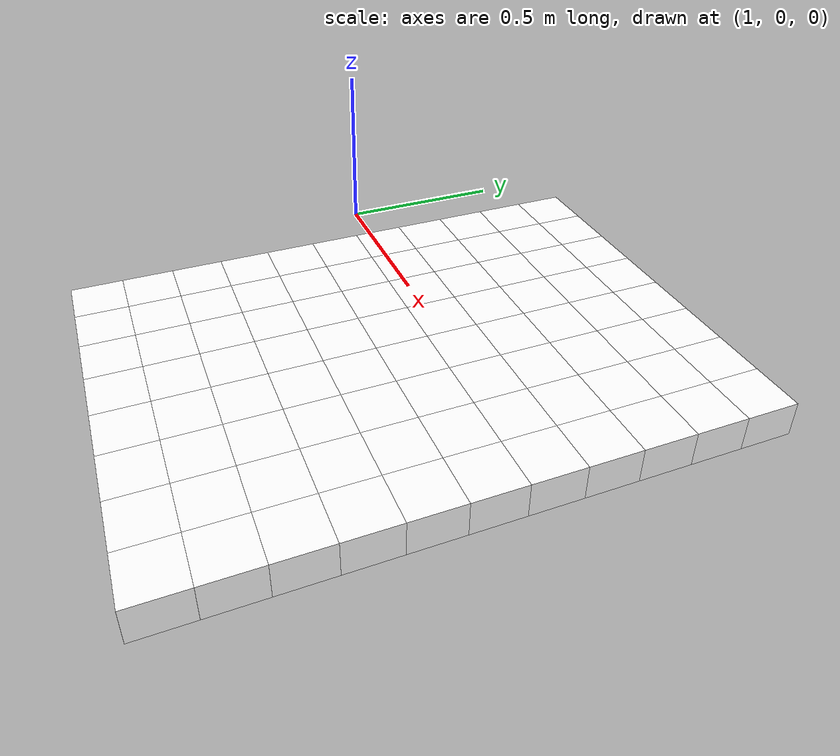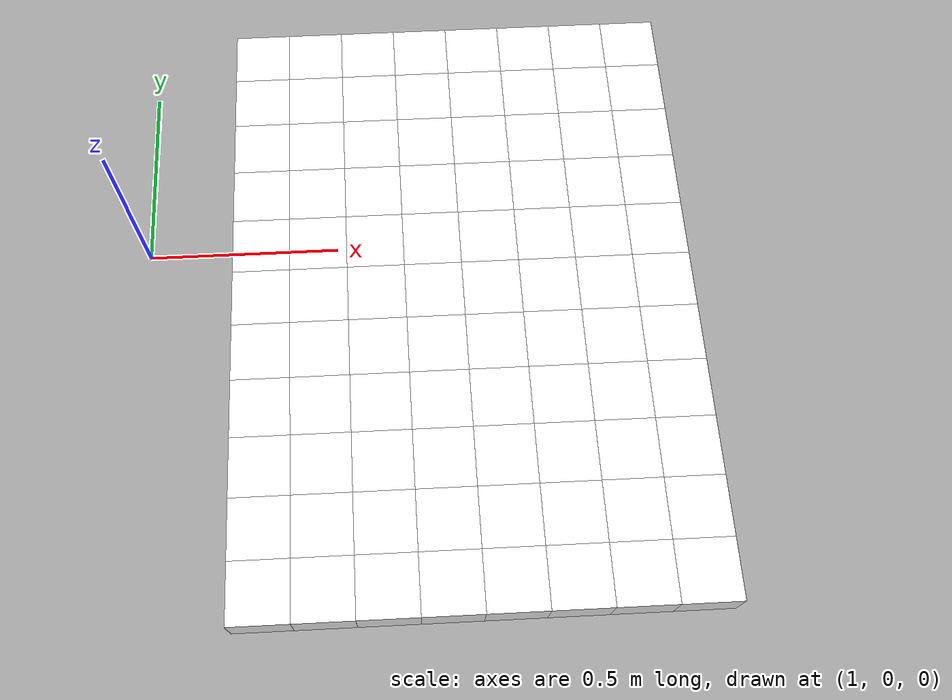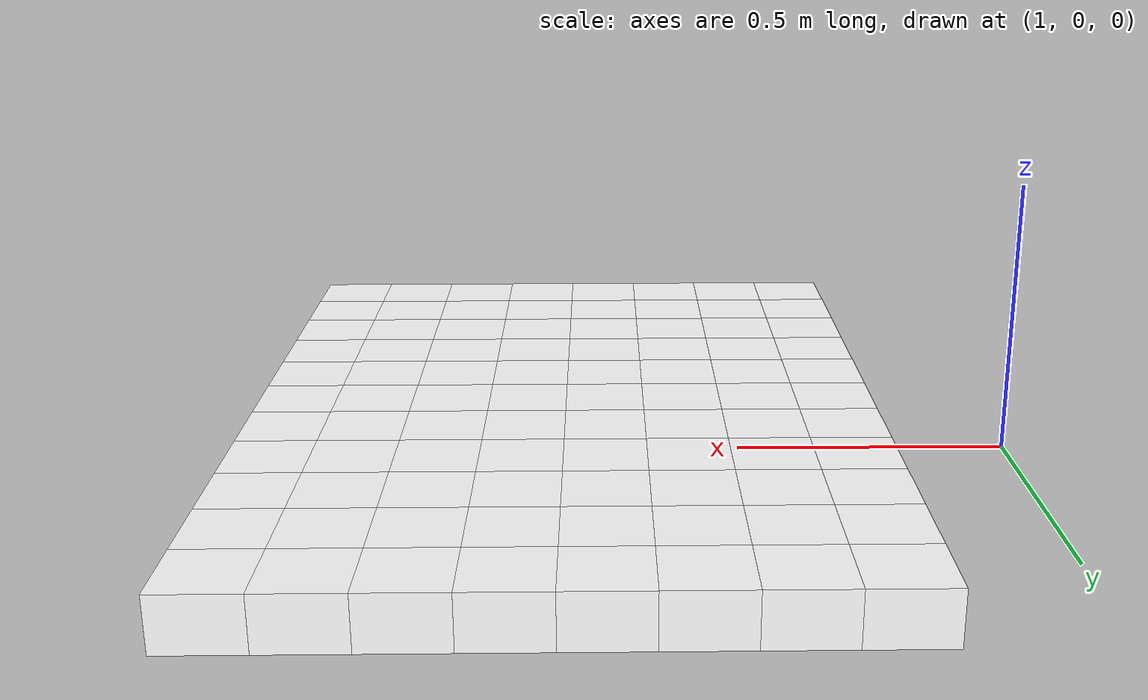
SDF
<sdf version="1.7">
 <world name="default">
  <include><uri>model://sun</uri></include>
  <model name="static_environment">
   <static>true</static>
   <link name="region_440">
    <pose>1.299999986936109 0.5997063647309107 0.0 0.0 0.0 4.7123</pose>
    <collision name="region_440_collision">
     <geometry><box><size>0.15 0.15 0.1</size></box></geometry>
     <surface><friction><ode><mu>1.0</mu><mu2>1.0</mu2></ode></friction></surface>
    </collision>
    <visual name="region_440_visual">
     <geometry><box><size>0.15 0.15 0.1</size></box></geometry>
     <material><ambient>1.0 1.0 1.0 1.0</ambient><diffuse>1.0 1.0 1.0 1.0</diffuse></material>
    </visual>
   </link>
   <link name="region_441">
    <pose>1.2999866398784232 0.44970636532472386 0.0 0.0 0.0 4.7123</pose>
    <collision name="region_441_collision">
     <geometry><box><size>0.15 0.15 0.1</size></box></geometry>
     <surface><friction><ode><mu>1.0</mu><mu2>1.0</mu2></ode></friction></surface>
    </collision>
    <visual name="region_441_visual">
     <geometry><box><size>0.15 0.15 0.1</size></box></geometry>
     <material><ambient>1.0 1.0 1.0 1.0</ambient><diffuse>1.0 1.0 1.0 1.0</diffuse></material>
    </visual>
   </link>
   <link name="region_442">
    <pose>1.299973292820737 0.29970636591853705 0.0 0.0 0.0 4.7123</pose>
    <collision name="region_442_collision">
     <geometry><box><size>0.15 0.15 0.1</size></box></geometry>
     <surface><friction><ode><mu>1.0</mu><mu2>1.0</mu2></ode></friction></surface>
    </collision>
    <visual name="region_442_visual">
     <geometry><box><size>0.15 0.15 0.1</size></box></geometry>
     <material><ambient>1.0 1.0 1.0 1.0</ambient><diffuse>1.0 1.0 1.0 1.0</diffuse></material>
    </visual>
   </link>
   <link name="region_443">
    <pose>1.2999599457630513 0.1497063665123503 0.0 0.0 0.0 4.7123</pose>
    <collision name="region_443_collision">
     <geometry><box><size>0.15 0.15 0.1</size></box></geometry>
     <surface><friction><ode><mu>1.0</mu><mu2>1.0</mu2></ode></friction></surface>
    </collision>
    <visual name="region_443_visual">
     <geometry><box><size>0.15 0.15 0.1</size></box></geometry>
     <material><ambient>1.0 1.0 1.0 1.0</ambient><diffuse>1.0 1.0 1.0 1.0</diffuse></material>
    </visual>
   </link>
   <link name="region_444">
    <pose>1.2999465987053656 -0.00029363289383654845 0.0 0.0 0.0 4.7123</pose>
    <collision name="region_444_collision">
     <geometry><box><size>0.15 0.15 0.1</size></box></geometry>
     <surface><friction><ode><mu>1.0</mu><mu2>1.0</mu2></ode></friction></surface>
    </collision>
    <visual name="region_444_visual">
     <geometry><box><size>0.15 0.15 0.1</size></box></geometry>
     <material><ambient>1.0 1.0 1.0 1.0</ambient><diffuse>1.0 1.0 1.0 1.0</diffuse></material>
    </visual>
   </link>
   <link name="region_445">
    <pose>1.2999332516476794 -0.15029363230002335 0.0 0.0 0.0 4.7123</pose>
    <collision name="region_445_collision">
     <geometry><box><size>0.15 0.15 0.1</size></box></geometry>
     <surface><friction><ode><mu>1.0</mu><mu2>1.0</mu2></ode></friction></surface>
    </collision>
    <visual name="region_445_visual">
     <geometry><box><size>0.15 0.15 0.1</size></box></geometry>
     <material><ambient>1.0 1.0 1.0 1.0</ambient><diffuse>1.0 1.0 1.0 1.0</diffuse></material>
    </visual>
   </link>
   <link name="region_446">
    <pose>1.2999199045899936 -0.30029363170621026 0.0 0.0 0.0 4.7123</pose>
    <collision name="region_446_collision">
     <geometry><box><size>0.15 0.15 0.1</size></box></geometry>
     <surface><friction><ode><mu>1.0</mu><mu2>1.0</mu2></ode></friction></surface>
    </collision>
    <visual name="region_446_visual">
     <geometry><box><size>0.15 0.15 0.1</size></box></geometry>
     <material><ambient>1.0 1.0 1.0 1.0</ambient><diffuse>1.0 1.0 1.0 1.0</diffuse></material>
    </visual>
   </link>
   <link name="region_447">
    <pose>1.2999065575323079 -0.4502936311123972 0.0 0.0 0.0 4.7123</pose>
    <collision name="region_447_collision">
     <geometry><box><size>0.15 0.15 0.1</size></box></geometry>
     <surface><friction><ode><mu>1.0</mu><mu2>1.0</mu2></ode></friction></surface>
    </collision>
    <visual name="region_447_visual">
     <geometry><box><size>0.15 0.15 0.1</size></box></geometry>
     <material><ambient>1.0 1.0 1.0 1.0</ambient><diffuse>1.0 1.0 1.0 1.0</diffuse></material>
    </visual>
   </link>
   <link name="region_448">
    <pose>1.2998932104746221 -0.6002936305185839 0.0 0.0 0.0 4.7123</pose>
    <collision name="region_448_collision">
     <geometry><box><size>0.15 0.15 0.1</size></box></geometry>
     <surface><friction><ode><mu>1.0</mu><mu2>1.0</mu2></ode></friction></surface>
    </collision>
    <visual name="region_448_visual">
     <geometry><box><size>0.15 0.15 0.1</size></box></geometry>
     <material><ambient>1.0 1.0 1.0 1.0</ambient><diffuse>1.0 1.0 1.0 1.0</diffuse></material>
    </visual>
   </link>
   <link name="region_449">
    <pose>1.299879863416936 -0.7502936299247706 0.0 0.0 0.0 4.7123</pose>
    <collision name="region_449_collision">
     <geometry><box><size>0.15 0.15 0.1</size></box></geometry>
     <surface><friction><ode><mu>1.0</mu><mu2>1.0</mu2></ode></friction></surface>
    </collision>
    <visual name="region_449_visual">
     <geometry><box><size>0.15 0.15 0.1</size></box></geometry>
     <material><ambient>1.0 1.0 1.0 1.0</ambient><diffuse>1.0 1.0 1.0 1.0</diffuse></material>
    </visual>
   </link>
   <link name="region_450">
    <pose>1.2998665163592502 -0.9002936293309572 0.0 0.0 0.0 4.7123</pose>
    <collision name="region_450_collision">
     <geometry><box><size>0.15 0.15 0.1</size></box></geometry>
     <surface><friction><ode><mu>1.0</mu><mu2>1.0</mu2></ode></friction></surface>
    </collision>
    <visual name="region_450_visual">
     <geometry><box><size>0.15 0.15 0.1</size></box></geometry>
     <material><ambient>1.0 1.0 1.0 1.0</ambient><diffuse>1.0 1.0 1.0 1.0</diffuse></material>
    </visual>
   </link>
   <link name="region_460">
    <pose>1.4499999863422959 0.5996930176732248 0.0 0.0 0.0 4.7123</pose>
    <collision name="region_460_collision">
     <geometry><box><size>0.15 0.15 0.1</size></box></geometry>
     <surface><friction><ode><mu>1.0</mu><mu2>1.0</mu2></ode></friction></surface>
    </collision>
    <visual name="region_460_visual">
     <geometry><box><size>0.15 0.15 0.1</size></box></geometry>
     <material><ambient>1.0 1.0 1.0 1.0</ambient><diffuse>1.0 1.0 1.0 1.0</diffuse></material>
    </visual>
   </link>
   <link name="region_461">
    <pose>1.4499866392846101 0.449693018267038 0.0 0.0 0.0 4.7123</pose>
    <collision name="region_461_collision">
     <geometry><box><size>0.15 0.15 0.1</size></box></geometry>
     <surface><friction><ode><mu>1.0</mu><mu2>1.0</mu2></ode></friction></surface>
    </collision>
    <visual name="region_461_visual">
     <geometry><box><size>0.15 0.15 0.1</size></box></geometry>
     <material><ambient>1.0 1.0 1.0 1.0</ambient><diffuse>1.0 1.0 1.0 1.0</diffuse></material>
    </visual>
   </link>
   <link name="region_462">
    <pose>1.449973292226924 0.2996930188608512 0.0 0.0 0.0 4.7123</pose>
    <collision name="region_462_collision">
     <geometry><box><size>0.15 0.15 0.1</size></box></geometry>
     <surface><friction><ode><mu>1.0</mu><mu2>1.0</mu2></ode></friction></surface>
    </collision>
    <visual name="region_462_visual">
     <geometry><box><size>0.15 0.15 0.1</size></box></geometry>
     <material><ambient>1.0 1.0 1.0 1.0</ambient><diffuse>1.0 1.0 1.0 1.0</diffuse></material>
    </visual>
   </link>
   <link name="region_463">
    <pose>1.4499599451692382 0.1496930194546644 0.0 0.0 0.0 4.7123</pose>
    <collision name="region_463_collision">
     <geometry><box><size>0.15 0.15 0.1</size></box></geometry>
     <surface><friction><ode><mu>1.0</mu><mu2>1.0</mu2></ode></friction></surface>
    </collision>
    <visual name="region_463_visual">
     <geometry><box><size>0.15 0.15 0.1</size></box></geometry>
     <material><ambient>1.0 1.0 1.0 1.0</ambient><diffuse>1.0 1.0 1.0 1.0</diffuse></material>
    </visual>
   </link>
   <link name="region_464">
    <pose>1.4499465981115525 -0.00030697995152240143 0.0 0.0 0.0 4.7123</pose>
    <collision name="region_464_collision">
     <geometry><box><size>0.15 0.15 0.1</size></box></geometry>
     <surface><friction><ode><mu>1.0</mu><mu2>1.0</mu2></ode></friction></surface>
    </collision>
    <visual name="region_464_visual">
     <geometry><box><size>0.15 0.15 0.1</size></box></geometry>
     <material><ambient>1.0 1.0 1.0 1.0</ambient><diffuse>1.0 1.0 1.0 1.0</diffuse></material>
    </visual>
   </link>
   <link name="region_465">
    <pose>1.4499332510538663 -0.1503069793577093 0.0 0.0 0.0 4.7123</pose>
    <collision name="region_465_collision">
     <geometry><box><size>0.15 0.15 0.1</size></box></geometry>
     <surface><friction><ode><mu>1.0</mu><mu2>1.0</mu2></ode></friction></surface>
    </collision>
    <visual name="region_465_visual">
     <geometry><box><size>0.15 0.15 0.1</size></box></geometry>
     <material><ambient>1.0 1.0 1.0 1.0</ambient><diffuse>1.0 1.0 1.0 1.0</diffuse></material>
    </visual>
   </link>
   <link name="region_466">
    <pose>1.4499199039961805 -0.3003069787638961 0.0 0.0 0.0 4.7123</pose>
    <collision name="region_466_collision">
     <geometry><box><size>0.15 0.15 0.1</size></box></geometry>
     <surface><friction><ode><mu>1.0</mu><mu2>1.0</mu2></ode></friction></surface>
    </collision>
    <visual name="region_466_visual">
     <geometry><box><size>0.15 0.15 0.1</size></box></geometry>
     <material><ambient>1.0 1.0 1.0 1.0</ambient><diffuse>1.0 1.0 1.0 1.0</diffuse></material>
    </visual>
   </link>
   <link name="region_467">
    <pose>1.4499065569384948 -0.4503069781700829 0.0 0.0 0.0 4.7123</pose>
    <collision name="region_467_collision">
     <geometry><box><size>0.15 0.15 0.1</size></box></geometry>
     <surface><friction><ode><mu>1.0</mu><mu2>1.0</mu2></ode></friction></surface>
    </collision>
    <visual name="region_467_visual">
     <geometry><box><size>0.15 0.15 0.1</size></box></geometry>
     <material><ambient>1.0 1.0 1.0 1.0</ambient><diffuse>1.0 1.0 1.0 1.0</diffuse></material>
    </visual>
   </link>
   <link name="region_468">
    <pose>1.449893209880809 -0.6003069775762696 0.0 0.0 0.0 4.7123</pose>
    <collision name="region_468_collision">
     <geometry><box><size>0.15 0.15 0.1</size></box></geometry>
     <surface><friction><ode><mu>1.0</mu><mu2>1.0</mu2></ode></friction></surface>
    </collision>
    <visual name="region_468_visual">
     <geometry><box><size>0.15 0.15 0.1</size></box></geometry>
     <material><ambient>1.0 1.0 1.0 1.0</ambient><diffuse>1.0 1.0 1.0 1.0</diffuse></material>
    </visual>
   </link>
   <link name="region_469">
    <pose>1.4498798628231229 -0.7503069769824563 0.0 0.0 0.0 4.7123</pose>
    <collision name="region_469_collision">
     <geometry><box><size>0.15 0.15 0.1</size></box></geometry>
     <surface><friction><ode><mu>1.0</mu><mu2>1.0</mu2></ode></friction></surface>
    </collision>
    <visual name="region_469_visual">
     <geometry><box><size>0.15 0.15 0.1</size></box></geometry>
     <material><ambient>1.0 1.0 1.0 1.0</ambient><diffuse>1.0 1.0 1.0 1.0</diffuse></material>
    </visual>
   </link>
   <link name="region_470">
    <pose>1.4498665157654371 -0.9003069763886432 0.0 0.0 0.0 4.7123</pose>
    <collision name="region_470_collision">
     <geometry><box><size>0.15 0.15 0.1</size></box></geometry>
     <surface><friction><ode><mu>1.0</mu><mu2>1.0</mu2></ode></friction></surface>
    </collision>
    <visual name="region_470_visual">
     <geometry><box><size>0.15 0.15 0.1</size></box></geometry>
     <material><ambient>1.0 1.0 1.0 1.0</ambient><diffuse>1.0 1.0 1.0 1.0</diffuse></material>
    </visual>
   </link>
   <link name="region_480">
    <pose>1.5999999857484823 0.599679670615539 0.0 0.0 0.0 4.7123</pose>
    <collision name="region_480_collision">
     <geometry><box><size>0.15 0.15 0.1</size></box></geometry>
     <surface><friction><ode><mu>1.0</mu><mu2>1.0</mu2></ode></friction></surface>
    </collision>
    <visual name="region_480_visual">
     <geometry><box><size>0.15 0.15 0.1</size></box></geometry>
     <material><ambient>1.0 1.0 1.0 1.0</ambient><diffuse>1.0 1.0 1.0 1.0</diffuse></material>
    </visual>
   </link>
   <link name="region_481">
    <pose>1.5999866386907966 0.44967967120935215 0.0 0.0 0.0 4.7123</pose>
    <collision name="region_481_collision">
     <geometry><box><size>0.15 0.15 0.1</size></box></geometry>
     <surface><friction><ode><mu>1.0</mu><mu2>1.0</mu2></ode></friction></surface>
    </collision>
    <visual name="region_481_visual">
     <geometry><box><size>0.15 0.15 0.1</size></box></geometry>
     <material><ambient>1.0 1.0 1.0 1.0</ambient><diffuse>1.0 1.0 1.0 1.0</diffuse></material>
    </visual>
   </link>
   <link name="region_482">
    <pose>1.5999732916331104 0.29967967180316535 0.0 0.0 0.0 4.7123</pose>
    <collision name="region_482_collision">
     <geometry><box><size>0.15 0.15 0.1</size></box></geometry>
     <surface><friction><ode><mu>1.0</mu><mu2>1.0</mu2></ode></friction></surface>
    </collision>
    <visual name="region_482_visual">
     <geometry><box><size>0.15 0.15 0.1</size></box></geometry>
     <material><ambient>1.0 1.0 1.0 1.0</ambient><diffuse>1.0 1.0 1.0 1.0</diffuse></material>
    </visual>
   </link>
   <link name="region_483">
    <pose>1.5999599445754247 0.14967967239697855 0.0 0.0 0.0 4.7123</pose>
    <collision name="region_483_collision">
     <geometry><box><size>0.15 0.15 0.1</size></box></geometry>
     <surface><friction><ode><mu>1.0</mu><mu2>1.0</mu2></ode></friction></surface>
    </collision>
    <visual name="region_483_visual">
     <geometry><box><size>0.15 0.15 0.1</size></box></geometry>
     <material><ambient>1.0 1.0 1.0 1.0</ambient><diffuse>1.0 1.0 1.0 1.0</diffuse></material>
    </visual>
   </link>
   <link name="region_484">
    <pose>1.599946597517739 -0.0003203270092082544 0.0 0.0 0.0 4.7123</pose>
    <collision name="region_484_collision">
     <geometry><box><size>0.15 0.15 0.1</size></box></geometry>
     <surface><friction><ode><mu>1.0</mu><mu2>1.0</mu2></ode></friction></surface>
    </collision>
    <visual name="region_484_visual">
     <geometry><box><size>0.15 0.15 0.1</size></box></geometry>
     <material><ambient>1.0 1.0 1.0 1.0</ambient><diffuse>1.0 1.0 1.0 1.0</diffuse></material>
    </visual>
   </link>
   <link name="region_485">
    <pose>1.5999332504600527 -0.15032032641539517 0.0 0.0 0.0 4.7123</pose>
    <collision name="region_485_collision">
     <geometry><box><size>0.15 0.15 0.1</size></box></geometry>
     <surface><friction><ode><mu>1.0</mu><mu2>1.0</mu2></ode></friction></surface>
    </collision>
    <visual name="region_485_visual">
     <geometry><box><size>0.15 0.15 0.1</size></box></geometry>
     <material><ambient>1.0 1.0 1.0 1.0</ambient><diffuse>1.0 1.0 1.0 1.0</diffuse></material>
    </visual>
   </link>
   <link name="region_486">
    <pose>1.599919903402367 -0.30032032582158197 0.0 0.0 0.0 4.7123</pose>
    <collision name="region_486_collision">
     <geometry><box><size>0.15 0.15 0.1</size></box></geometry>
     <surface><friction><ode><mu>1.0</mu><mu2>1.0</mu2></ode></friction></surface>
    </collision>
    <visual name="region_486_visual">
     <geometry><box><size>0.15 0.15 0.1</size></box></geometry>
     <material><ambient>1.0 1.0 1.0 1.0</ambient><diffuse>1.0 1.0 1.0 1.0</diffuse></material>
    </visual>
   </link>
   <link name="region_487">
    <pose>1.5999065563446813 -0.4503203252277689 0.0 0.0 0.0 4.7123</pose>
    <collision name="region_487_collision">
     <geometry><box><size>0.15 0.15 0.1</size></box></geometry>
     <surface><friction><ode><mu>1.0</mu><mu2>1.0</mu2></ode></friction></surface>
    </collision>
    <visual name="region_487_visual">
     <geometry><box><size>0.15 0.15 0.1</size></box></geometry>
     <material><ambient>1.0 1.0 1.0 1.0</ambient><diffuse>1.0 1.0 1.0 1.0</diffuse></material>
    </visual>
   </link>
   <link name="region_488">
    <pose>1.5998932092869955 -0.6003203246339556 0.0 0.0 0.0 4.7123</pose>
    <collision name="region_488_collision">
     <geometry><box><size>0.15 0.15 0.1</size></box></geometry>
     <surface><friction><ode><mu>1.0</mu><mu2>1.0</mu2></ode></friction></surface>
    </collision>
    <visual name="region_488_visual">
     <geometry><box><size>0.15 0.15 0.1</size></box></geometry>
     <material><ambient>1.0 1.0 1.0 1.0</ambient><diffuse>1.0 1.0 1.0 1.0</diffuse></material>
    </visual>
   </link>
   <link name="region_489">
    <pose>1.5998798622293093 -0.7503203240401423 0.0 0.0 0.0 4.7123</pose>
    <collision name="region_489_collision">
     <geometry><box><size>0.15 0.15 0.1</size></box></geometry>
     <surface><friction><ode><mu>1.0</mu><mu2>1.0</mu2></ode></friction></surface>
    </collision>
    <visual name="region_489_visual">
     <geometry><box><size>0.15 0.15 0.1</size></box></geometry>
     <material><ambient>1.0 1.0 1.0 1.0</ambient><diffuse>1.0 1.0 1.0 1.0</diffuse></material>
    </visual>
   </link>
   <link name="region_490">
    <pose>1.5998665151716236 -0.900320323446329 0.0 0.0 0.0 4.7123</pose>
    <collision name="region_490_collision">
     <geometry><box><size>0.15 0.15 0.1</size></box></geometry>
     <surface><friction><ode><mu>1.0</mu><mu2>1.0</mu2></ode></friction></surface>
    </collision>
    <visual name="region_490_visual">
     <geometry><box><size>0.15 0.15 0.1</size></box></geometry>
     <material><ambient>1.0 1.0 1.0 1.0</ambient><diffuse>1.0 1.0 1.0 1.0</diffuse></material>
    </visual>
   </link>
   <link name="region_500">
    <pose>1.7499999851546693 0.5996663235578531 0.0 0.0 0.0 4.7123</pose>
    <collision name="region_500_collision">
     <geometry><box><size>0.15 0.15 0.1</size></box></geometry>
     <surface><friction><ode><mu>1.0</mu><mu2>1.0</mu2></ode></friction></surface>
    </collision>
    <visual name="region_500_visual">
     <geometry><box><size>0.15 0.15 0.1</size></box></geometry>
     <material><ambient>1.0 1.0 1.0 1.0</ambient><diffuse>1.0 1.0 1.0 1.0</diffuse></material>
    </visual>
   </link>
   <link name="region_501">
    <pose>1.7499866380969835 0.4496663241516663 0.0 0.0 0.0 4.7123</pose>
    <collision name="region_501_collision">
     <geometry><box><size>0.15 0.15 0.1</size></box></geometry>
     <surface><friction><ode><mu>1.0</mu><mu2>1.0</mu2></ode></friction></surface>
    </collision>
    <visual name="region_501_visual">
     <geometry><box><size>0.15 0.15 0.1</size></box></geometry>
     <material><ambient>1.0 1.0 1.0 1.0</ambient><diffuse>1.0 1.0 1.0 1.0</diffuse></material>
    </visual>
   </link>
   <link name="region_502">
    <pose>1.7499732910392973 0.29966632474547944 0.0 0.0 0.0 4.7123</pose>
    <collision name="region_502_collision">
     <geometry><box><size>0.15 0.15 0.1</size></box></geometry>
     <surface><friction><ode><mu>1.0</mu><mu2>1.0</mu2></ode></friction></surface>
    </collision>
    <visual name="region_502_visual">
     <geometry><box><size>0.15 0.15 0.1</size></box></geometry>
     <material><ambient>1.0 1.0 1.0 1.0</ambient><diffuse>1.0 1.0 1.0 1.0</diffuse></material>
    </visual>
   </link>
   <link name="region_503">
    <pose>1.7499599439816116 0.14966632533929264 0.0 0.0 0.0 4.7123</pose>
    <collision name="region_503_collision">
     <geometry><box><size>0.15 0.15 0.1</size></box></geometry>
     <surface><friction><ode><mu>1.0</mu><mu2>1.0</mu2></ode></friction></surface>
    </collision>
    <visual name="region_503_visual">
     <geometry><box><size>0.15 0.15 0.1</size></box></geometry>
     <material><ambient>1.0 1.0 1.0 1.0</ambient><diffuse>1.0 1.0 1.0 1.0</diffuse></material>
    </visual>
   </link>
   <link name="region_504">
    <pose>1.7499465969239258 -0.0003336740668942184 0.0 0.0 0.0 4.7123</pose>
    <collision name="region_504_collision">
     <geometry><box><size>0.15 0.15 0.1</size></box></geometry>
     <surface><friction><ode><mu>1.0</mu><mu2>1.0</mu2></ode></friction></surface>
    </collision>
    <visual name="region_504_visual">
     <geometry><box><size>0.15 0.15 0.1</size></box></geometry>
     <material><ambient>1.0 1.0 1.0 1.0</ambient><diffuse>1.0 1.0 1.0 1.0</diffuse></material>
    </visual>
   </link>
   <link name="region_505">
    <pose>1.7499332498662397 -0.15033367347308102 0.0 0.0 0.0 4.7123</pose>
    <collision name="region_505_collision">
     <geometry><box><size>0.15 0.15 0.1</size></box></geometry>
     <surface><friction><ode><mu>1.0</mu><mu2>1.0</mu2></ode></friction></surface>
    </collision>
    <visual name="region_505_visual">
     <geometry><box><size>0.15 0.15 0.1</size></box></geometry>
     <material><ambient>1.0 1.0 1.0 1.0</ambient><diffuse>1.0 1.0 1.0 1.0</diffuse></material>
    </visual>
   </link>
   <link name="region_506">
    <pose>1.749919902808554 -0.3003336728792678 0.0 0.0 0.0 4.7123</pose>
    <collision name="region_506_collision">
     <geometry><box><size>0.15 0.15 0.1</size></box></geometry>
     <surface><friction><ode><mu>1.0</mu><mu2>1.0</mu2></ode></friction></surface>
    </collision>
    <visual name="region_506_visual">
     <geometry><box><size>0.15 0.15 0.1</size></box></geometry>
     <material><ambient>1.0 1.0 1.0 1.0</ambient><diffuse>1.0 1.0 1.0 1.0</diffuse></material>
    </visual>
   </link>
   <link name="region_507">
    <pose>1.7499065557508682 -0.4503336722854546 0.0 0.0 0.0 4.7123</pose>
    <collision name="region_507_collision">
     <geometry><box><size>0.15 0.15 0.1</size></box></geometry>
     <surface><friction><ode><mu>1.0</mu><mu2>1.0</mu2></ode></friction></surface>
    </collision>
    <visual name="region_507_visual">
     <geometry><box><size>0.15 0.15 0.1</size></box></geometry>
     <material><ambient>1.0 1.0 1.0 1.0</ambient><diffuse>1.0 1.0 1.0 1.0</diffuse></material>
    </visual>
   </link>
   <link name="region_508">
    <pose>1.7498932086931824 -0.6003336716916415 0.0 0.0 0.0 4.7123</pose>
    <collision name="region_508_collision">
     <geometry><box><size>0.15 0.15 0.1</size></box></geometry>
     <surface><friction><ode><mu>1.0</mu><mu2>1.0</mu2></ode></friction></surface>
    </collision>
    <visual name="region_508_visual">
     <geometry><box><size>0.15 0.15 0.1</size></box></geometry>
     <material><ambient>1.0 1.0 1.0 1.0</ambient><diffuse>1.0 1.0 1.0 1.0</diffuse></material>
    </visual>
   </link>
   <link name="region_509">
    <pose>1.7498798616354962 -0.7503336710978282 0.0 0.0 0.0 4.7123</pose>
    <collision name="region_509_collision">
     <geometry><box><size>0.15 0.15 0.1</size></box></geometry>
     <surface><friction><ode><mu>1.0</mu><mu2>1.0</mu2></ode></friction></surface>
    </collision>
    <visual name="region_509_visual">
     <geometry><box><size>0.15 0.15 0.1</size></box></geometry>
     <material><ambient>1.0 1.0 1.0 1.0</ambient><diffuse>1.0 1.0 1.0 1.0</diffuse></material>
    </visual>
   </link>
   <link name="region_510">
    <pose>1.7498665145778105 -0.9003336705040149 0.0 0.0 0.0 4.7123</pose>
    <collision name="region_510_collision">
     <geometry><box><size>0.15 0.15 0.1</size></box></geometry>
     <surface><friction><ode><mu>1.0</mu><mu2>1.0</mu2></ode></friction></surface>
    </collision>
    <visual name="region_510_visual">
     <geometry><box><size>0.15 0.15 0.1</size></box></geometry>
     <material><ambient>1.0 1.0 1.0 1.0</ambient><diffuse>1.0 1.0 1.0 1.0</diffuse></material>
    </visual>
   </link>
   <link name="region_520">
    <pose>1.8999999845608557 0.5996529765001672 0.0 0.0 0.0 4.7123</pose>
    <collision name="region_520_collision">
     <geometry><box><size>0.15 0.15 0.1</size></box></geometry>
     <surface><friction><ode><mu>1.0</mu><mu2>1.0</mu2></ode></friction></surface>
    </collision>
    <visual name="region_520_visual">
     <geometry><box><size>0.15 0.15 0.1</size></box></geometry>
     <material><ambient>1.0 1.0 1.0 1.0</ambient><diffuse>1.0 1.0 1.0 1.0</diffuse></material>
    </visual>
   </link>
   <link name="region_521">
    <pose>1.89998663750317 0.4496529770939804 0.0 0.0 0.0 4.7123</pose>
    <collision name="region_521_collision">
     <geometry><box><size>0.15 0.15 0.1</size></box></geometry>
     <surface><friction><ode><mu>1.0</mu><mu2>1.0</mu2></ode></friction></surface>
    </collision>
    <visual name="region_521_visual">
     <geometry><box><size>0.15 0.15 0.1</size></box></geometry>
     <material><ambient>1.0 1.0 1.0 1.0</ambient><diffuse>1.0 1.0 1.0 1.0</diffuse></material>
    </visual>
   </link>
   <link name="region_522">
    <pose>1.8999732904454838 0.2996529776877936 0.0 0.0 0.0 4.7123</pose>
    <collision name="region_522_collision">
     <geometry><box><size>0.15 0.15 0.1</size></box></geometry>
     <surface><friction><ode><mu>1.0</mu><mu2>1.0</mu2></ode></friction></surface>
    </collision>
    <visual name="region_522_visual">
     <geometry><box><size>0.15 0.15 0.1</size></box></geometry>
     <material><ambient>1.0 1.0 1.0 1.0</ambient><diffuse>1.0 1.0 1.0 1.0</diffuse></material>
    </visual>
   </link>
   <link name="region_523">
    <pose>1.899959943387798 0.14965297828160679 0.0 0.0 0.0 4.7123</pose>
    <collision name="region_523_collision">
     <geometry><box><size>0.15 0.15 0.1</size></box></geometry>
     <surface><friction><ode><mu>1.0</mu><mu2>1.0</mu2></ode></friction></surface>
    </collision>
    <visual name="region_523_visual">
     <geometry><box><size>0.15 0.15 0.1</size></box></geometry>
     <material><ambient>1.0 1.0 1.0 1.0</ambient><diffuse>1.0 1.0 1.0 1.0</diffuse></material>
    </visual>
   </link>
   <link name="region_524">
    <pose>1.8999465963301123 -0.0003470211245800714 0.0 0.0 0.0 4.7123</pose>
    <collision name="region_524_collision">
     <geometry><box><size>0.15 0.15 0.1</size></box></geometry>
     <surface><friction><ode><mu>1.0</mu><mu2>1.0</mu2></ode></friction></surface>
    </collision>
    <visual name="region_524_visual">
     <geometry><box><size>0.15 0.15 0.1</size></box></geometry>
     <material><ambient>1.0 1.0 1.0 1.0</ambient><diffuse>1.0 1.0 1.0 1.0</diffuse></material>
    </visual>
   </link>
   <link name="region_525">
    <pose>1.8999332492724261 -0.15034702053076687 0.0 0.0 0.0 4.7123</pose>
    <collision name="region_525_collision">
     <geometry><box><size>0.15 0.15 0.1</size></box></geometry>
     <surface><friction><ode><mu>1.0</mu><mu2>1.0</mu2></ode></friction></surface>
    </collision>
    <visual name="region_525_visual">
     <geometry><box><size>0.15 0.15 0.1</size></box></geometry>
     <material><ambient>1.0 1.0 1.0 1.0</ambient><diffuse>1.0 1.0 1.0 1.0</diffuse></material>
    </visual>
   </link>
   <link name="region_526">
    <pose>1.8999199022147404 -0.3003470199369538 0.0 0.0 0.0 4.7123</pose>
    <collision name="region_526_collision">
     <geometry><box><size>0.15 0.15 0.1</size></box></geometry>
     <surface><friction><ode><mu>1.0</mu><mu2>1.0</mu2></ode></friction></surface>
    </collision>
    <visual name="region_526_visual">
     <geometry><box><size>0.15 0.15 0.1</size></box></geometry>
     <material><ambient>1.0 1.0 1.0 1.0</ambient><diffuse>1.0 1.0 1.0 1.0</diffuse></material>
    </visual>
   </link>
   <link name="region_527">
    <pose>1.8999065551570546 -0.4503470193431406 0.0 0.0 0.0 4.7123</pose>
    <collision name="region_527_collision">
     <geometry><box><size>0.15 0.15 0.1</size></box></geometry>
     <surface><friction><ode><mu>1.0</mu><mu2>1.0</mu2></ode></friction></surface>
    </collision>
    <visual name="region_527_visual">
     <geometry><box><size>0.15 0.15 0.1</size></box></geometry>
     <material><ambient>1.0 1.0 1.0 1.0</ambient><diffuse>1.0 1.0 1.0 1.0</diffuse></material>
    </visual>
   </link>
   <link name="region_528">
    <pose>1.899893208099369 -0.6003470187493273 0.0 0.0 0.0 4.7123</pose>
    <collision name="region_528_collision">
     <geometry><box><size>0.15 0.15 0.1</size></box></geometry>
     <surface><friction><ode><mu>1.0</mu><mu2>1.0</mu2></ode></friction></surface>
    </collision>
    <visual name="region_528_visual">
     <geometry><box><size>0.15 0.15 0.1</size></box></geometry>
     <material><ambient>1.0 1.0 1.0 1.0</ambient><diffuse>1.0 1.0 1.0 1.0</diffuse></material>
    </visual>
   </link>
   <link name="region_529">
    <pose>1.8998798610416827 -0.750347018155514 0.0 0.0 0.0 4.7123</pose>
    <collision name="region_529_collision">
     <geometry><box><size>0.15 0.15 0.1</size></box></geometry>
     <surface><friction><ode><mu>1.0</mu><mu2>1.0</mu2></ode></friction></surface>
    </collision>
    <visual name="region_529_visual">
     <geometry><box><size>0.15 0.15 0.1</size></box></geometry>
     <material><ambient>1.0 1.0 1.0 1.0</ambient><diffuse>1.0 1.0 1.0 1.0</diffuse></material>
    </visual>
   </link>
   <link name="region_530">
    <pose>1.899866513983997 -0.9003470175617007 0.0 0.0 0.0 4.7123</pose>
    <collision name="region_530_collision">
     <geometry><box><size>0.15 0.15 0.1</size></box></geometry>
     <surface><friction><ode><mu>1.0</mu><mu2>1.0</mu2></ode></friction></surface>
    </collision>
    <visual name="region_530_visual">
     <geometry><box><size>0.15 0.15 0.1</size></box></geometry>
     <material><ambient>1.0 1.0 1.0 1.0</ambient><diffuse>1.0 1.0 1.0 1.0</diffuse></material>
    </visual>
   </link>
   <link name="region_540">
    <pose>2.0499999839670426 0.5996396294424813 0.0 0.0 0.0 4.7123</pose>
    <collision name="region_540_collision">
     <geometry><box><size>0.15 0.15 0.1</size></box></geometry>
     <surface><friction><ode><mu>1.0</mu><mu2>1.0</mu2></ode></friction></surface>
    </collision>
    <visual name="region_540_visual">
     <geometry><box><size>0.15 0.15 0.1</size></box></geometry>
     <material><ambient>1.0 1.0 1.0 1.0</ambient><diffuse>1.0 1.0 1.0 1.0</diffuse></material>
    </visual>
   </link>
   <link name="region_541">
    <pose>2.049986636909357 0.4496396300362945 0.0 0.0 0.0 4.7123</pose>
    <collision name="region_541_collision">
     <geometry><box><size>0.15 0.15 0.1</size></box></geometry>
     <surface><friction><ode><mu>1.0</mu><mu2>1.0</mu2></ode></friction></surface>
    </collision>
    <visual name="region_541_visual">
     <geometry><box><size>0.15 0.15 0.1</size></box></geometry>
     <material><ambient>1.0 1.0 1.0 1.0</ambient><diffuse>1.0 1.0 1.0 1.0</diffuse></material>
    </visual>
   </link>
   <link name="region_542">
    <pose>2.049973289851671 0.2996396306301077 0.0 0.0 0.0 4.7123</pose>
    <collision name="region_542_collision">
     <geometry><box><size>0.15 0.15 0.1</size></box></geometry>
     <surface><friction><ode><mu>1.0</mu><mu2>1.0</mu2></ode></friction></surface>
    </collision>
    <visual name="region_542_visual">
     <geometry><box><size>0.15 0.15 0.1</size></box></geometry>
     <material><ambient>1.0 1.0 1.0 1.0</ambient><diffuse>1.0 1.0 1.0 1.0</diffuse></material>
    </visual>
   </link>
   <link name="region_543">
    <pose>2.0499599427939854 0.14963963122392093 0.0 0.0 0.0 4.7123</pose>
    <collision name="region_543_collision">
     <geometry><box><size>0.15 0.15 0.1</size></box></geometry>
     <surface><friction><ode><mu>1.0</mu><mu2>1.0</mu2></ode></friction></surface>
    </collision>
    <visual name="region_543_visual">
     <geometry><box><size>0.15 0.15 0.1</size></box></geometry>
     <material><ambient>1.0 1.0 1.0 1.0</ambient><diffuse>1.0 1.0 1.0 1.0</diffuse></material>
    </visual>
   </link>
   <link name="region_544">
    <pose>2.049946595736299 -0.0003603681822659244 0.0 0.0 0.0 4.7123</pose>
    <collision name="region_544_collision">
     <geometry><box><size>0.15 0.15 0.1</size></box></geometry>
     <surface><friction><ode><mu>1.0</mu><mu2>1.0</mu2></ode></friction></surface>
    </collision>
    <visual name="region_544_visual">
     <geometry><box><size>0.15 0.15 0.1</size></box></geometry>
     <material><ambient>1.0 1.0 1.0 1.0</ambient><diffuse>1.0 1.0 1.0 1.0</diffuse></material>
    </visual>
   </link>
   <link name="region_545">
    <pose>2.049933248678613 -0.15036036758845273 0.0 0.0 0.0 4.7123</pose>
    <collision name="region_545_collision">
     <geometry><box><size>0.15 0.15 0.1</size></box></geometry>
     <surface><friction><ode><mu>1.0</mu><mu2>1.0</mu2></ode></friction></surface>
    </collision>
    <visual name="region_545_visual">
     <geometry><box><size>0.15 0.15 0.1</size></box></geometry>
     <material><ambient>1.0 1.0 1.0 1.0</ambient><diffuse>1.0 1.0 1.0 1.0</diffuse></material>
    </visual>
   </link>
   <link name="region_546">
    <pose>2.0499199016209273 -0.30036036699463964 0.0 0.0 0.0 4.7123</pose>
    <collision name="region_546_collision">
     <geometry><box><size>0.15 0.15 0.1</size></box></geometry>
     <surface><friction><ode><mu>1.0</mu><mu2>1.0</mu2></ode></friction></surface>
    </collision>
    <visual name="region_546_visual">
     <geometry><box><size>0.15 0.15 0.1</size></box></geometry>
     <material><ambient>1.0 1.0 1.0 1.0</ambient><diffuse>1.0 1.0 1.0 1.0</diffuse></material>
    </visual>
   </link>
   <link name="region_547">
    <pose>2.0499065545632416 -0.45036036640082655 0.0 0.0 0.0 4.7123</pose>
    <collision name="region_547_collision">
     <geometry><box><size>0.15 0.15 0.1</size></box></geometry>
     <surface><friction><ode><mu>1.0</mu><mu2>1.0</mu2></ode></friction></surface>
    </collision>
    <visual name="region_547_visual">
     <geometry><box><size>0.15 0.15 0.1</size></box></geometry>
     <material><ambient>1.0 1.0 1.0 1.0</ambient><diffuse>1.0 1.0 1.0 1.0</diffuse></material>
    </visual>
   </link>
   <link name="region_548">
    <pose>2.049893207505556 -0.6003603658070132 0.0 0.0 0.0 4.7123</pose>
    <collision name="region_548_collision">
     <geometry><box><size>0.15 0.15 0.1</size></box></geometry>
     <surface><friction><ode><mu>1.0</mu><mu2>1.0</mu2></ode></friction></surface>
    </collision>
    <visual name="region_548_visual">
     <geometry><box><size>0.15 0.15 0.1</size></box></geometry>
     <material><ambient>1.0 1.0 1.0 1.0</ambient><diffuse>1.0 1.0 1.0 1.0</diffuse></material>
    </visual>
   </link>
   <link name="region_549">
    <pose>2.04987986044787 -0.7503603652131999 0.0 0.0 0.0 4.7123</pose>
    <collision name="region_549_collision">
     <geometry><box><size>0.15 0.15 0.1</size></box></geometry>
     <surface><friction><ode><mu>1.0</mu><mu2>1.0</mu2></ode></friction></surface>
    </collision>
    <visual name="region_549_visual">
     <geometry><box><size>0.15 0.15 0.1</size></box></geometry>
     <material><ambient>1.0 1.0 1.0 1.0</ambient><diffuse>1.0 1.0 1.0 1.0</diffuse></material>
    </visual>
   </link>
   <link name="region_550">
    <pose>2.0498665133901834 -0.9003603646193866 0.0 0.0 0.0 4.7123</pose>
    <collision name="region_550_collision">
     <geometry><box><size>0.15 0.15 0.1</size></box></geometry>
     <surface><friction><ode><mu>1.0</mu><mu2>1.0</mu2></ode></friction></surface>
    </collision>
    <visual name="region_550_visual">
     <geometry><box><size>0.15 0.15 0.1</size></box></geometry>
     <material><ambient>1.0 1.0 1.0 1.0</ambient><diffuse>1.0 1.0 1.0 1.0</diffuse></material>
    </visual>
   </link>
   <link name="region_560">
    <pose>2.19999998337323 0.5996262823847954 0.0 0.0 0.0 4.7123</pose>
    <collision name="region_560_collision">
     <geometry><box><size>0.15 0.15 0.1</size></box></geometry>
     <surface><friction><ode><mu>1.0</mu><mu2>1.0</mu2></ode></friction></surface>
    </collision>
    <visual name="region_560_visual">
     <geometry><box><size>0.15 0.15 0.1</size></box></geometry>
     <material><ambient>1.0 1.0 1.0 1.0</ambient><diffuse>1.0 1.0 1.0 1.0</diffuse></material>
    </visual>
   </link>
   <link name="region_561">
    <pose>2.1999866363155443 0.4496262829786086 0.0 0.0 0.0 4.7123</pose>
    <collision name="region_561_collision">
     <geometry><box><size>0.15 0.15 0.1</size></box></geometry>
     <surface><friction><ode><mu>1.0</mu><mu2>1.0</mu2></ode></friction></surface>
    </collision>
    <visual name="region_561_visual">
     <geometry><box><size>0.15 0.15 0.1</size></box></geometry>
     <material><ambient>1.0 1.0 1.0 1.0</ambient><diffuse>1.0 1.0 1.0 1.0</diffuse></material>
    </visual>
   </link>
   <link name="region_562">
    <pose>2.1999732892578585 0.2996262835724218 0.0 0.0 0.0 4.7123</pose>
    <collision name="region_562_collision">
     <geometry><box><size>0.15 0.15 0.1</size></box></geometry>
     <surface><friction><ode><mu>1.0</mu><mu2>1.0</mu2></ode></friction></surface>
    </collision>
    <visual name="region_562_visual">
     <geometry><box><size>0.15 0.15 0.1</size></box></geometry>
     <material><ambient>1.0 1.0 1.0 1.0</ambient><diffuse>1.0 1.0 1.0 1.0</diffuse></material>
    </visual>
   </link>
   <link name="region_563">
    <pose>2.1999599422001728 0.14962628416623502 0.0 0.0 0.0 4.7123</pose>
    <collision name="region_563_collision">
     <geometry><box><size>0.15 0.15 0.1</size></box></geometry>
     <surface><friction><ode><mu>1.0</mu><mu2>1.0</mu2></ode></friction></surface>
    </collision>
    <visual name="region_563_visual">
     <geometry><box><size>0.15 0.15 0.1</size></box></geometry>
     <material><ambient>1.0 1.0 1.0 1.0</ambient><diffuse>1.0 1.0 1.0 1.0</diffuse></material>
    </visual>
   </link>
   <link name="region_564">
    <pose>2.199946595142486 -0.00037371523995177736 0.0 0.0 0.0 4.7123</pose>
    <collision name="region_564_collision">
     <geometry><box><size>0.15 0.15 0.1</size></box></geometry>
     <surface><friction><ode><mu>1.0</mu><mu2>1.0</mu2></ode></friction></surface>
    </collision>
    <visual name="region_564_visual">
     <geometry><box><size>0.15 0.15 0.1</size></box></geometry>
     <material><ambient>1.0 1.0 1.0 1.0</ambient><diffuse>1.0 1.0 1.0 1.0</diffuse></material>
    </visual>
   </link>
   <link name="region_565">
    <pose>2.1999332480848004 -0.1503737146461387 0.0 0.0 0.0 4.7123</pose>
    <collision name="region_565_collision">
     <geometry><box><size>0.15 0.15 0.1</size></box></geometry>
     <surface><friction><ode><mu>1.0</mu><mu2>1.0</mu2></ode></friction></surface>
    </collision>
    <visual name="region_565_visual">
     <geometry><box><size>0.15 0.15 0.1</size></box></geometry>
     <material><ambient>1.0 1.0 1.0 1.0</ambient><diffuse>1.0 1.0 1.0 1.0</diffuse></material>
    </visual>
   </link>
   <link name="region_566">
    <pose>2.1999199010271147 -0.3003737140523255 0.0 0.0 0.0 4.7123</pose>
    <collision name="region_566_collision">
     <geometry><box><size>0.15 0.15 0.1</size></box></geometry>
     <surface><friction><ode><mu>1.0</mu><mu2>1.0</mu2></ode></friction></surface>
    </collision>
    <visual name="region_566_visual">
     <geometry><box><size>0.15 0.15 0.1</size></box></geometry>
     <material><ambient>1.0 1.0 1.0 1.0</ambient><diffuse>1.0 1.0 1.0 1.0</diffuse></material>
    </visual>
   </link>
   <link name="region_567">
    <pose>2.199906553969429 -0.4503737134585123 0.0 0.0 0.0 4.7123</pose>
    <collision name="region_567_collision">
     <geometry><box><size>0.15 0.15 0.1</size></box></geometry>
     <surface><friction><ode><mu>1.0</mu><mu2>1.0</mu2></ode></friction></surface>
    </collision>
    <visual name="region_567_visual">
     <geometry><box><size>0.15 0.15 0.1</size></box></geometry>
     <material><ambient>1.0 1.0 1.0 1.0</ambient><diffuse>1.0 1.0 1.0 1.0</diffuse></material>
    </visual>
   </link>
   <link name="region_568">
    <pose>2.199893206911743 -0.600373712864699 0.0 0.0 0.0 4.7123</pose>
    <collision name="region_568_collision">
     <geometry><box><size>0.15 0.15 0.1</size></box></geometry>
     <surface><friction><ode><mu>1.0</mu><mu2>1.0</mu2></ode></friction></surface>
    </collision>
    <visual name="region_568_visual">
     <geometry><box><size>0.15 0.15 0.1</size></box></geometry>
     <material><ambient>1.0 1.0 1.0 1.0</ambient><diffuse>1.0 1.0 1.0 1.0</diffuse></material>
    </visual>
   </link>
   <link name="region_569">
    <pose>2.1998798598540574 -0.7503737122708857 0.0 0.0 0.0 4.7123</pose>
    <collision name="region_569_collision">
     <geometry><box><size>0.15 0.15 0.1</size></box></geometry>
     <surface><friction><ode><mu>1.0</mu><mu2>1.0</mu2></ode></friction></surface>
    </collision>
    <visual name="region_569_visual">
     <geometry><box><size>0.15 0.15 0.1</size></box></geometry>
     <material><ambient>1.0 1.0 1.0 1.0</ambient><diffuse>1.0 1.0 1.0 1.0</diffuse></material>
    </visual>
   </link>
   <link name="region_570">
    <pose>2.199866512796371 -0.9003737116770726 0.0 0.0 0.0 4.7123</pose>
    <collision name="region_570_collision">
     <geometry><box><size>0.15 0.15 0.1</size></box></geometry>
     <surface><friction><ode><mu>1.0</mu><mu2>1.0</mu2></ode></friction></surface>
    </collision>
    <visual name="region_570_visual">
     <geometry><box><size>0.15 0.15 0.1</size></box></geometry>
     <material><ambient>1.0 1.0 1.0 1.0</ambient><diffuse>1.0 1.0 1.0 1.0</diffuse></material>
    </visual>
   </link>
   <link name="region_580">
    <pose>2.3499999827794174 0.5996129353271096 0.0 0.0 0.0 4.7123</pose>
    <collision name="region_580_collision">
     <geometry><box><size>0.15 0.15 0.1</size></box></geometry>
     <surface><friction><ode><mu>1.0</mu><mu2>1.0</mu2></ode></friction></surface>
    </collision>
    <visual name="region_580_visual">
     <geometry><box><size>0.15 0.15 0.1</size></box></geometry>
     <material><ambient>1.0 1.0 1.0 1.0</ambient><diffuse>1.0 1.0 1.0 1.0</diffuse></material>
    </visual>
   </link>
   <link name="region_581">
    <pose>2.3499866357217316 0.4496129359209228 0.0 0.0 0.0 4.7123</pose>
    <collision name="region_581_collision">
     <geometry><box><size>0.15 0.15 0.1</size></box></geometry>
     <surface><friction><ode><mu>1.0</mu><mu2>1.0</mu2></ode></friction></surface>
    </collision>
    <visual name="region_581_visual">
     <geometry><box><size>0.15 0.15 0.1</size></box></geometry>
     <material><ambient>1.0 1.0 1.0 1.0</ambient><diffuse>1.0 1.0 1.0 1.0</diffuse></material>
    </visual>
   </link>
   <link name="region_582">
    <pose>2.349973288664046 0.299612936514736 0.0 0.0 0.0 4.7123</pose>
    <collision name="region_582_collision">
     <geometry><box><size>0.15 0.15 0.1</size></box></geometry>
     <surface><friction><ode><mu>1.0</mu><mu2>1.0</mu2></ode></friction></surface>
    </collision>
    <visual name="region_582_visual">
     <geometry><box><size>0.15 0.15 0.1</size></box></geometry>
     <material><ambient>1.0 1.0 1.0 1.0</ambient><diffuse>1.0 1.0 1.0 1.0</diffuse></material>
    </visual>
   </link>
   <link name="region_583">
    <pose>2.34995994160636 0.14961293710854917 0.0 0.0 0.0 4.7123</pose>
    <collision name="region_583_collision">
     <geometry><box><size>0.15 0.15 0.1</size></box></geometry>
     <surface><friction><ode><mu>1.0</mu><mu2>1.0</mu2></ode></friction></surface>
    </collision>
    <visual name="region_583_visual">
     <geometry><box><size>0.15 0.15 0.1</size></box></geometry>
     <material><ambient>1.0 1.0 1.0 1.0</ambient><diffuse>1.0 1.0 1.0 1.0</diffuse></material>
    </visual>
   </link>
   <link name="region_584">
    <pose>2.3499465945486735 -0.00038706229763763034 0.0 0.0 0.0 4.7123</pose>
    <collision name="region_584_collision">
     <geometry><box><size>0.15 0.15 0.1</size></box></geometry>
     <surface><friction><ode><mu>1.0</mu><mu2>1.0</mu2></ode></friction></surface>
    </collision>
    <visual name="region_584_visual">
     <geometry><box><size>0.15 0.15 0.1</size></box></geometry>
     <material><ambient>1.0 1.0 1.0 1.0</ambient><diffuse>1.0 1.0 1.0 1.0</diffuse></material>
    </visual>
   </link>
   <link name="region_585">
    <pose>2.3499332474909878 -0.15038706170382454 0.0 0.0 0.0 4.7123</pose>
    <collision name="region_585_collision">
     <geometry><box><size>0.15 0.15 0.1</size></box></geometry>
     <surface><friction><ode><mu>1.0</mu><mu2>1.0</mu2></ode></friction></surface>
    </collision>
    <visual name="region_585_visual">
     <geometry><box><size>0.15 0.15 0.1</size></box></geometry>
     <material><ambient>1.0 1.0 1.0 1.0</ambient><diffuse>1.0 1.0 1.0 1.0</diffuse></material>
    </visual>
   </link>
   <link name="region_586">
    <pose>2.349919900433302 -0.30038706111001134 0.0 0.0 0.0 4.7123</pose>
    <collision name="region_586_collision">
     <geometry><box><size>0.15 0.15 0.1</size></box></geometry>
     <surface><friction><ode><mu>1.0</mu><mu2>1.0</mu2></ode></friction></surface>
    </collision>
    <visual name="region_586_visual">
     <geometry><box><size>0.15 0.15 0.1</size></box></geometry>
     <material><ambient>1.0 1.0 1.0 1.0</ambient><diffuse>1.0 1.0 1.0 1.0</diffuse></material>
    </visual>
   </link>
   <link name="region_587">
    <pose>2.3499065533756163 -0.45038706051619826 0.0 0.0 0.0 4.7123</pose>
    <collision name="region_587_collision">
     <geometry><box><size>0.15 0.15 0.1</size></box></geometry>
     <surface><friction><ode><mu>1.0</mu><mu2>1.0</mu2></ode></friction></surface>
    </collision>
    <visual name="region_587_visual">
     <geometry><box><size>0.15 0.15 0.1</size></box></geometry>
     <material><ambient>1.0 1.0 1.0 1.0</ambient><diffuse>1.0 1.0 1.0 1.0</diffuse></material>
    </visual>
   </link>
   <link name="region_588">
    <pose>2.3498932063179305 -0.600387059922385 0.0 0.0 0.0 4.7123</pose>
    <collision name="region_588_collision">
     <geometry><box><size>0.15 0.15 0.1</size></box></geometry>
     <surface><friction><ode><mu>1.0</mu><mu2>1.0</mu2></ode></friction></surface>
    </collision>
    <visual name="region_588_visual">
     <geometry><box><size>0.15 0.15 0.1</size></box></geometry>
     <material><ambient>1.0 1.0 1.0 1.0</ambient><diffuse>1.0 1.0 1.0 1.0</diffuse></material>
    </visual>
   </link>
   <link name="region_589">
    <pose>2.349879859260245 -0.7503870593285716 0.0 0.0 0.0 4.7123</pose>
    <collision name="region_589_collision">
     <geometry><box><size>0.15 0.15 0.1</size></box></geometry>
     <surface><friction><ode><mu>1.0</mu><mu2>1.0</mu2></ode></friction></surface>
    </collision>
    <visual name="region_589_visual">
     <geometry><box><size>0.15 0.15 0.1</size></box></geometry>
     <material><ambient>1.0 1.0 1.0 1.0</ambient><diffuse>1.0 1.0 1.0 1.0</diffuse></material>
    </visual>
   </link>
   <link name="region_590">
    <pose>2.349866512202558 -0.9003870587347583 0.0 0.0 0.0 4.7123</pose>
    <collision name="region_590_collision">
     <geometry><box><size>0.15 0.15 0.1</size></box></geometry>
     <surface><friction><ode><mu>1.0</mu><mu2>1.0</mu2></ode></friction></surface>
    </collision>
    <visual name="region_590_visual">
     <geometry><box><size>0.15 0.15 0.1</size></box></geometry>
     <material><ambient>1.0 1.0 1.0 1.0</ambient><diffuse>1.0 1.0 1.0 1.0</diffuse></material>
    </visual>
   </link>
  </model>
 </world>
</sdf>
